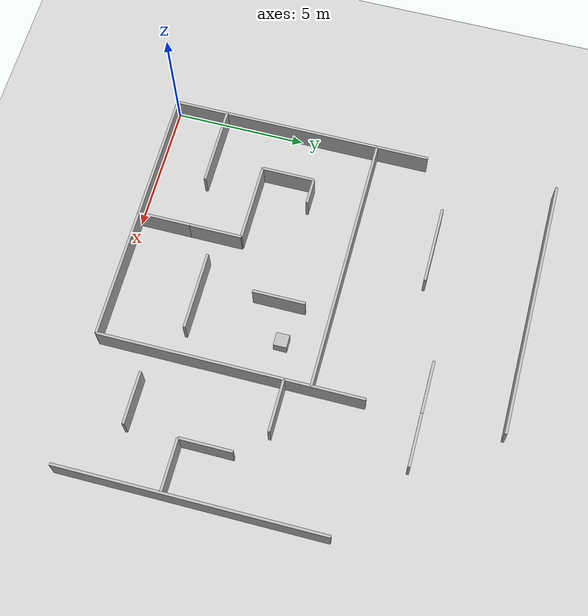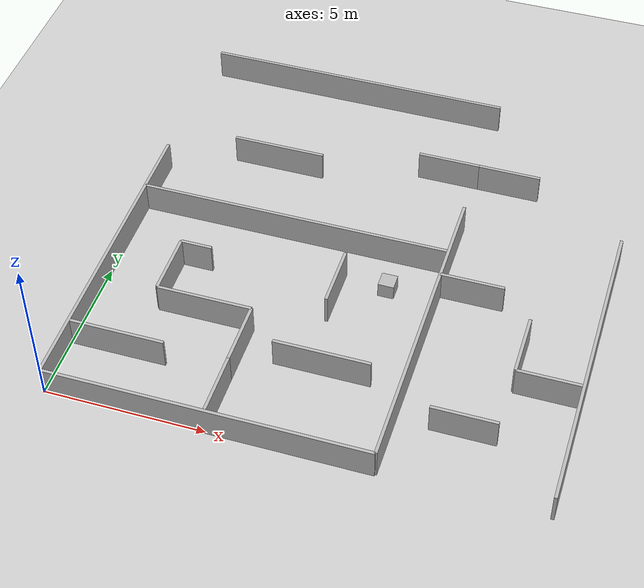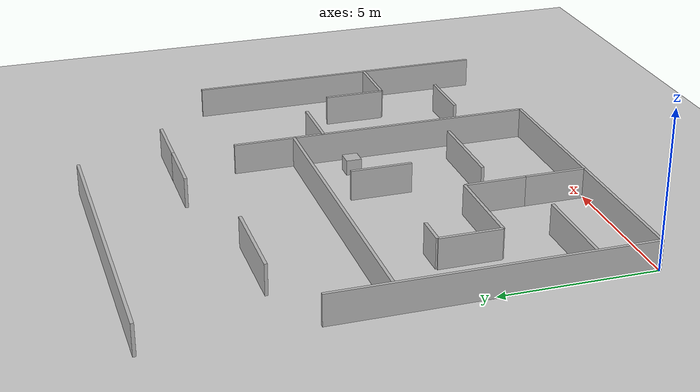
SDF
<sdf version="1.7">
 <world name="world_3">
  <include><uri>model://ground_plane</uri></include>
  <include><uri>model://sun</uri></include>
  <include><uri>model://wall_10_x</uri><name>wall_1</name><pose>5 0 0.5 0 0 0</pose></include>
  <include><uri>model://wall_10_x</uri><name>wall_3</name><pose>5 15 0.5 0 0 0</pose></include>
  <include><uri>model://wall_10_y</uri><name>wall_5</name><pose>0 5 0.5 0 0 0</pose></include>
  <include><uri>model://wall_10_y</uri><name>wall_7</name><pose>15 5 0.5 0 0 0</pose></include>
  <include><uri>model://wall_3_x</uri><name>wall_9</name><pose>1.5 2 0.5 0 0 0</pose></include>
  <include><uri>model://wall_2_y</uri><name>wall_10</name><pose>5 1 0.5 0 0 0</pose></include>
  <include><uri>model://wall_2_y</uri><name>wall_11</name><pose>5 3 0.5 0 0 0</pose></include>
  <include><uri>model://wall_3_x</uri><name>wall_12</name><pose>3.5 4 0.5 0 0 0</pose></include>
  <include><uri>model://wall_2_y</uri><name>wall_13</name><pose>2 5 0.5 0 0 0</pose></include>
  <include><uri>model://wall_1_x</uri><name>wall_14</name><pose>2.5 6 0.5 0 0 0</pose></include>
  <include><uri>model://wall_3_x</uri><name>wall_15</name><pose>7.5 3 0.5 0 0 0</pose></include>
  <include><uri>model://wall_2_y</uri><name>wall_16</name><pose>7 6 0.5 0 0 0</pose></include>
  <include><uri>model://wall_10_x</uri><name>wall_17</name><pose>5 8 0.5 0 0 0</pose></include>
  <include><uri>model://wall_10_y</uri><name>wall_18</name><pose>10 5 0.5 0 0 0</pose></include>
  <include><uri>model://wall_3_x</uri><name>wall_21</name><pose>3.5 11 0.5 0 0 0</pose></include>
  <include><uri>model://wall_2_x</uri><name>wall_23</name><pose>9 12 0.5 0 0 0</pose></include>
  <include><uri>model://wall_2_x</uri><name>wall_24</name><pose>11 12 0.5 0 0 0</pose></include>
  <include><uri>model://wall_2_x</uri><name>wall_26</name><pose>11 7 0.5 0 0 0</pose></include>
  <include><uri>model://wall_2_x</uri><name>wall_27</name><pose>12 2 0.5 0 0 0</pose></include>
  <include><uri>model://wall_2_x</uri><name>wall_28</name><pose>14 4 0.5 0 0 0</pose></include>
  <include><uri>model://wall_2_y</uri><name>wall_29</name><pose>13 5 0.5 0 0 0</pose></include>
  <model name="target_box">
   <pose>8.5 6.5 0.5 0 0 0</pose>
   <link name="link">
    <collision name="collision"><geometry><box><size>0.5 0.5 0.5</size></box></geometry></collision>
    <visual name="visual"><geometry><box><size>0.5 0.5 0.5</size></box></geometry></visual>
   </link>
  </model>
 </world>
</sdf>

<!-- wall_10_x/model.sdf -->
<sdf version="1.7">
  <model name="wall_10_x">
   <static>true</static>
    <link name="link">
      <collision name="collision">
        <geometry>
          <box>
            <size>10 0.1 1</size>  <!-- default size -->
          </box>
        </geometry>
      </collision>
      <visual name="visual">
        <geometry>
          <box>
            <size>10 0.1 1</size>
          </box>
        </geometry>
      </visual>
    </link>
  </model>
</sdf>

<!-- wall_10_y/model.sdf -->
<sdf version="1.7">
  <model name="wall_10_y">
   <static>true</static>
    <link name="link">
      <collision name="collision">
        <geometry>
          <box>
            <size>0.1 10 1</size>  <!-- default size -->
          </box>
        </geometry>
      </collision>
      <visual name="visual">
        <geometry>
          <box>
            <size>0.1 10 1</size>
          </box>
        </geometry>
      </visual>
    </link>
  </model>
</sdf>

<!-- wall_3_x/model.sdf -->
<sdf version="1.7">
  <model name="wall_3_x">
   <static>true</static>
    <link name="link">
      <collision name="collision">
        <geometry>
          <box>
            <size>3 0.1 1</size>  <!-- default size -->
          </box>
        </geometry>
      </collision>
      <visual name="visual">
        <geometry>
          <box>
            <size>3 0.1 1</size>
          </box>
        </geometry>
      </visual>
    </link>
  </model>
</sdf>

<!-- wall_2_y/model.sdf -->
<sdf version="1.7">
  <model name="wall_2_y">
   <static>true</static>
    <link name="link">
      <collision name="collision">
        <geometry>
          <box>
            <size>0.1 2 1</size>  <!-- default size -->
          </box>
        </geometry>
      </collision>
      <visual name="visual">
        <geometry>
          <box>
            <size>0.1 2 1</size>
          </box>
        </geometry>
      </visual>
    </link>
  </model>
</sdf>

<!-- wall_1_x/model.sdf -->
<sdf version="1.7">
  <model name="wall_1_x">
   <static>true</static>
    <link name="link">
      <collision name="collision">
        <geometry>
          <box>
            <size>1 0.1 1</size>  <!-- default size -->
          </box>
        </geometry>
      </collision>
      <visual name="visual">
        <geometry>
          <box>
            <size>1 0.1 1</size>
          </box>
        </geometry>
      </visual>
    </link>
  </model>
</sdf>

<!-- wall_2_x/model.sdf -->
<sdf version="1.7">
  <model name="wall_2_x">
   <static>true</static>
    <link name="link">
      <collision name="collision">
        <geometry>
          <box>
            <size>2 0.1 1</size>  <!-- default size -->
          </box>
        </geometry>
      </collision>
      <visual name="visual">
        <geometry>
          <box>
            <size>2 0.1 1</size>
          </box>
        </geometry>
      </visual>
    </link>
  </model>
</sdf>
